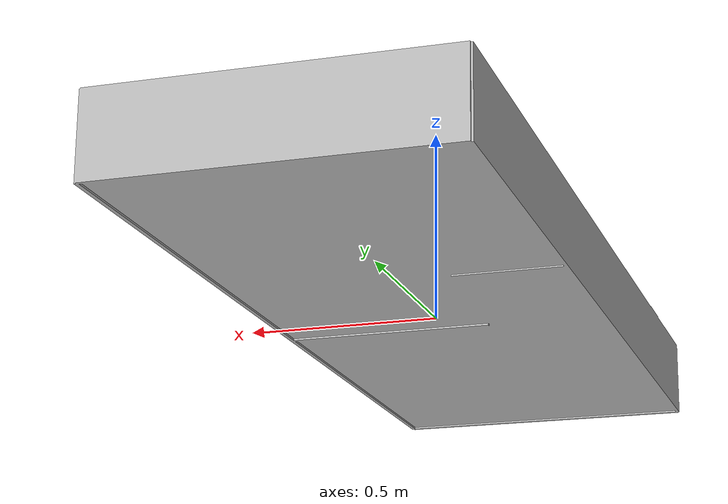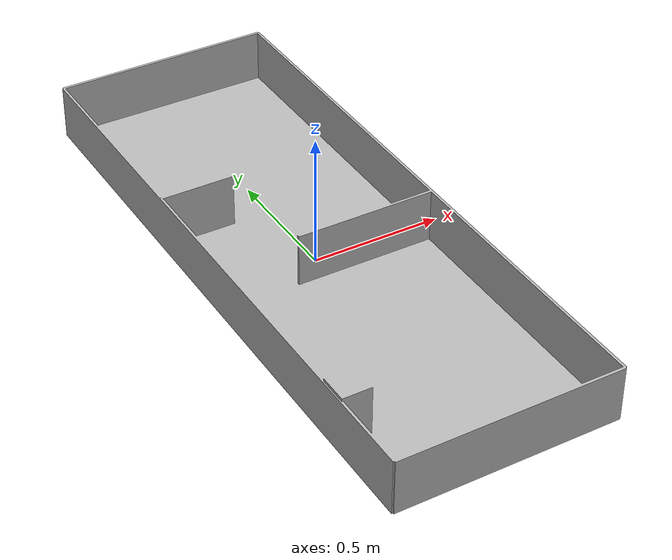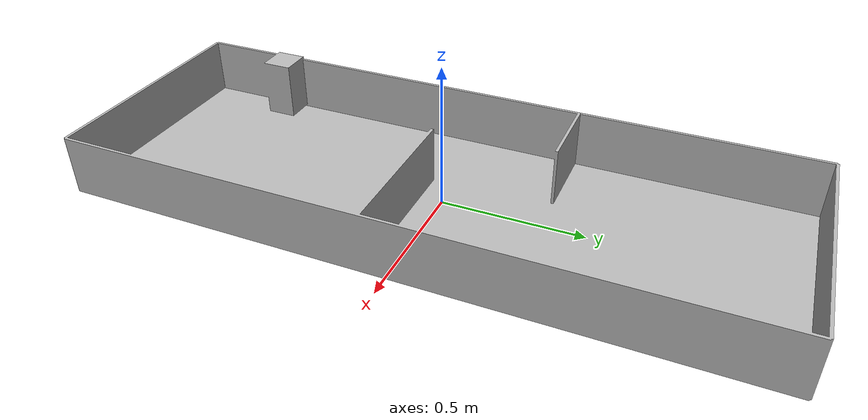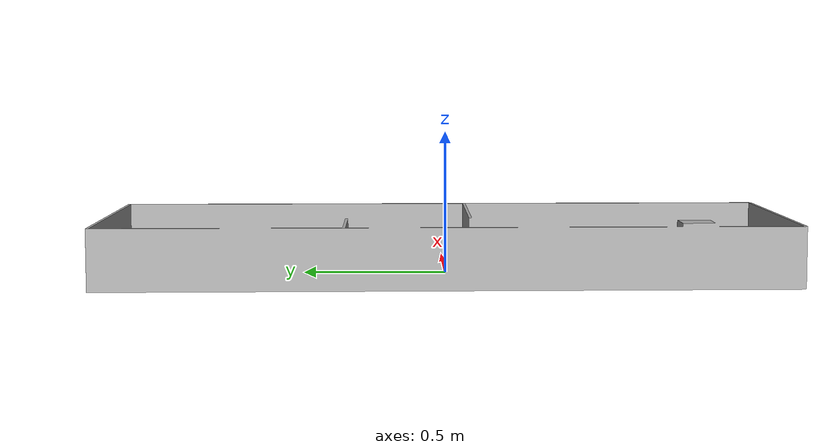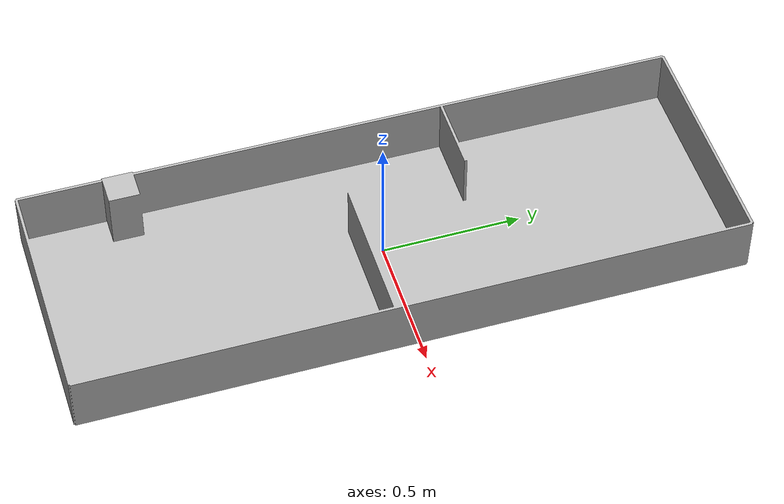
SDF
<?xml version='1.0'?>
<sdf version='1.6'>
  <model name='limo_lab'>
    <link name='link_1'>
         <visual name='visual'>
        <pose frame=''>0 0 0 0 -0 0</pose>
        <geometry>
          <mesh>
            <uri>model://limo_lab/meshes/limo_lab_no_box_stand.dae</uri>
            <scale>1 1 1</scale>
          </mesh>
        </geometry>
        <cast_shadows>1</cast_shadows>
        <transparency>0</transparency>
      </visual>
      <collision name='collision'>
        <laser_retro>0</laser_retro>
        <max_contacts>10</max_contacts>
        <pose frame=''>0 0 0 0 -0 0</pose>
        <geometry>
          <mesh>
            <uri>model://limo_lab/meshes/limo_lab_no_box_stand.dae</uri>
            <scale>1 1 1</scale>
          </mesh>
        </geometry>
     </collision>
    </link>

    <static>1</static>
    <allow_auto_disable>1</allow_auto_disable>
  </model>
</sdf>
